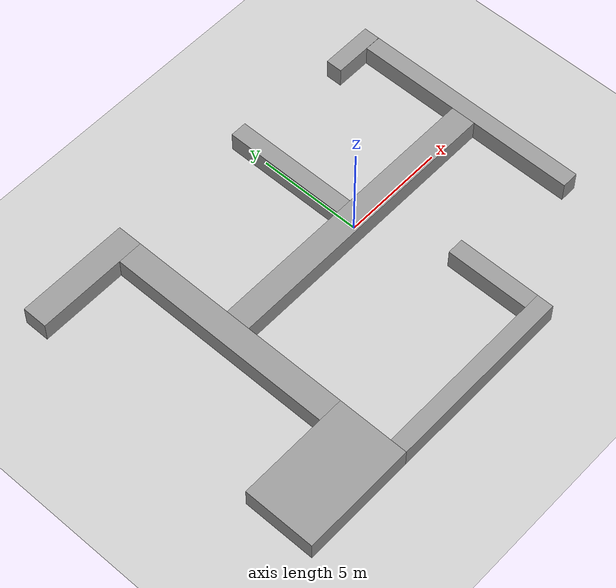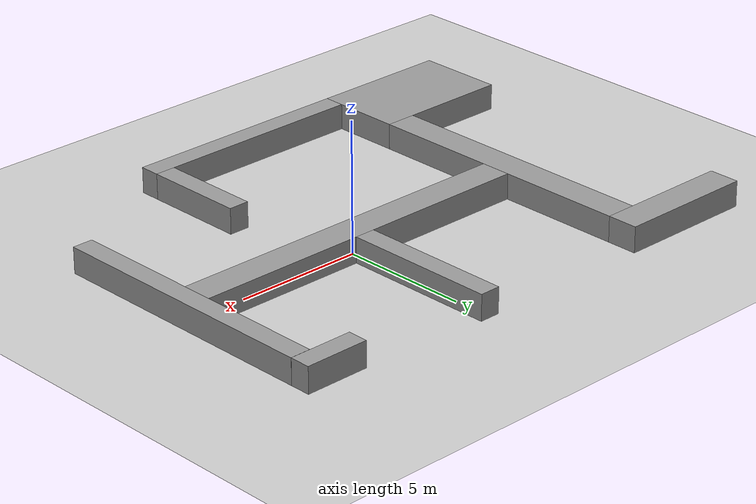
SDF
<sdf version="1.6">
 <world name="default">
  <model name="ground_plane">
   <static>1</static>
   <link name="link">
    <collision name="collision">
     <geometry><plane><normal>0 0 1</normal><size>100 100</size></plane></geometry>
     <surface><friction><ode><mu>100</mu><mu2>50</mu2></ode></friction></surface>
    </collision>
    <visual name="visual">
     <cast_shadows>0</cast_shadows>
     <geometry><plane><normal>0 0 1</normal><size>100 100</size></plane></geometry>
     <material>
      <script><uri>file://media/materials/scripts/gazebo.material</uri><name>Gazebo/Grey</name></script>
     </material>
    </visual>
   </link>
  </model>
  <model name="path">
   <link name="Wall_18">
    <pose>-7.6 0 0 0 -0 1.5708</pose>
    <inertial>
     <mass>100</mass>
     <inertia><ixx>1</ixx><ixy>0</ixy><ixz>0</ixz><iyy>1</iyy><iyz>0</iyz><izz>1</izz></inertia>
    </inertial>
    <visual name="Wall_18_Visual">
     <pose>0 0 0.5 0 -0 0</pose>
     <geometry><box><size>11 1.2 1</size></box></geometry>
     <material>
      <script><uri>file://media/materials/scripts/gazebo.material</uri><name>Gazebo/Grey</name></script>
      <ambient>0 0 0 1</ambient>
      <shader type="pixel"><normal_map>__default__</normal_map></shader>
      <diffuse>0 0 0 1</diffuse>
      <specular>0 0 0 1</specular>
      <emissive>0 0 0 1</emissive>
     </material>
     <meta><layer>0</layer></meta>
    </visual>
    <collision name="Wall_18_Collision">
     <pose>0 0 0.5 0 -0 0</pose>
     <geometry><box><size>11 1.2 1</size></box></geometry>
     <surface>
      <friction>
       <ode><mu>1</mu><mu2>1</mu2><fdir1>0 0 0</fdir1><slip1>0</slip1><slip2>0</slip2></ode>
       <torsional>
        <coefficient>1</coefficient>
        <patch_radius>0</patch_radius>
        <surface_radius>0</surface_radius>
        <use_patch_radius>1</use_patch_radius>
        <ode><slip>0</slip></ode>
       </torsional>
      </friction>
      <bounce><restitution_coefficient>0</restitution_coefficient><threshold>1e+06</threshold></bounce>
      <contact>
       <collide_without_contact>0</collide_without_contact>
       <collide_without_contact_bitmask>1</collide_without_contact_bitmask>
       <collide_bitmask>1</collide_bitmask>
       <ode>
        <soft_cfm>0</soft_cfm>
        <soft_erp>0.2</soft_erp>
        <kp>1e+13</kp>
        <kd>1</kd>
        <max_vel>0.01</max_vel>
        <min_depth>0</min_depth>
       </ode>
       <bullet>
        <split_impulse>1</split_impulse>
        <split_impulse_penetration_threshold>-0.01</split_impulse_penetration_threshold>
        <soft_cfm>0</soft_cfm>
        <soft_erp>0.2</soft_erp>
        <kp>1e+13</kp>
        <kd>1</kd>
       </bullet>
      </contact>
     </surface>
    </collision>
   </link>
   <link name="Wall_20">
    <pose>0 0 0 0 0 -0.000489</pose>
    <inertial>
     <mass>1</mass>
     <inertia><ixx>1</ixx><ixy>0</ixy><ixz>0</ixz><iyy>1</iyy><iyz>0</iyz><izz>1</izz></inertia>
    </inertial>
    <visual name="Wall_20_Visual">
     <pose>0 0 0.5 0 -0 0</pose>
     <geometry><box><size>14 1.2 1</size></box></geometry>
     <material>
      <script><uri>file://media/materials/scripts/gazebo.material</uri><name>Gazebo/Grey</name></script>
      <ambient>0 0 0 1</ambient>
      <shader type="pixel"><normal_map>__default__</normal_map></shader>
      <diffuse>0 0 0 1</diffuse>
      <specular>0 0 0 1</specular>
      <emissive>0 0 0 1</emissive>
     </material>
     <meta><layer>0</layer></meta>
    </visual>
    <collision name="Wall_20_Collision">
     <pose>0 0 0.5 0 -0 0</pose>
     <geometry><box><size>14 1.2 1</size></box></geometry>
     <surface>
      <friction>
       <ode><mu>1</mu><mu2>1</mu2><fdir1>0 0 0</fdir1><slip1>0</slip1><slip2>0</slip2></ode>
       <torsional>
        <coefficient>1</coefficient>
        <patch_radius>0</patch_radius>
        <surface_radius>0</surface_radius>
        <use_patch_radius>1</use_patch_radius>
        <ode><slip>0</slip></ode>
       </torsional>
      </friction>
      <bounce><restitution_coefficient>0</restitution_coefficient><threshold>1e+06</threshold></bounce>
      <contact>
       <collide_without_contact>0</collide_without_contact>
       <collide_without_contact_bitmask>1</collide_without_contact_bitmask>
       <collide_bitmask>1</collide_bitmask>
       <ode>
        <soft_cfm>0</soft_cfm>
        <soft_erp>0.2</soft_erp>
        <kp>1e+13</kp>
        <kd>1</kd>
        <max_vel>0.01</max_vel>
        <min_depth>0</min_depth>
       </ode>
       <bullet>
        <split_impulse>1</split_impulse>
        <split_impulse_penetration_threshold>-0.01</split_impulse_penetration_threshold>
        <soft_cfm>0</soft_cfm>
        <soft_erp>0.2</soft_erp>
        <kp>1e+13</kp>
        <kd>1</kd>
       </bullet>
      </contact>
     </surface>
    </collision>
   </link>
   <link name="Wall_21">
    <pose>7.4 0 0 0 -0 1.57072</pose>
    <inertial>
     <mass>1</mass>
     <inertia><ixx>1</ixx><ixy>0</ixy><ixz>0</ixz><iyy>1</iyy><iyz>0</iyz><izz>1</izz></inertia>
    </inertial>
    <visual name="Wall_21_Visual">
     <pose>0 0 0.5 0 -0 0</pose>
     <geometry><box><size>11 0.8 1</size></box></geometry>
     <material>
      <script><uri>file://media/materials/scripts/gazebo.material</uri><name>Gazebo/Grey</name></script>
      <ambient>0 0 0 1</ambient>
      <shader type="pixel"><normal_map>__default__</normal_map></shader>
      <diffuse>0 0 0 1</diffuse>
      <specular>0 0 0 1</specular>
      <emissive>0 0 0 1</emissive>
     </material>
     <meta><layer>0</layer></meta>
    </visual>
    <collision name="Wall_21_Collision">
     <pose>0 0 0.5 0 -0 0</pose>
     <geometry><box><size>11 0.8 1</size></box></geometry>
     <surface>
      <friction>
       <ode><mu>1</mu><mu2>1</mu2><fdir1>0 0 0</fdir1><slip1>0</slip1><slip2>0</slip2></ode>
       <torsional>
        <coefficient>1</coefficient>
        <patch_radius>0</patch_radius>
        <surface_radius>0</surface_radius>
        <use_patch_radius>1</use_patch_radius>
        <ode><slip>0</slip></ode>
       </torsional>
      </friction>
      <bounce><restitution_coefficient>0</restitution_coefficient><threshold>1e+06</threshold></bounce>
      <contact>
       <collide_without_contact>0</collide_without_contact>
       <collide_without_contact_bitmask>1</collide_without_contact_bitmask>
       <collide_bitmask>1</collide_bitmask>
       <ode>
        <soft_cfm>0</soft_cfm>
        <soft_erp>0.2</soft_erp>
        <kp>1e+13</kp>
        <kd>1</kd>
        <max_vel>0.01</max_vel>
        <min_depth>0</min_depth>
       </ode>
       <bullet>
        <split_impulse>1</split_impulse>
        <split_impulse_penetration_threshold>-0.01</split_impulse_penetration_threshold>
        <soft_cfm>0</soft_cfm>
        <soft_erp>0.2</soft_erp>
        <kp>1e+13</kp>
        <kd>1</kd>
       </bullet>
      </contact>
     </surface>
    </collision>
   </link>
   <link name="Wall_25">
    <pose>0 3.6 0 0 -0 1.5708</pose>
    <inertial>
     <mass>1</mass>
     <inertia><ixx>1</ixx><ixy>0</ixy><ixz>0</ixz><iyy>1</iyy><iyz>0</iyz><izz>1</izz></inertia>
    </inertial>
    <visual name="Wall_25_Visual">
     <pose>0 0 0.5 0 -0 0</pose>
     <geometry><box><size>6 0.8 1</size></box></geometry>
     <material>
      <script><uri>file://media/materials/scripts/gazebo.material</uri><name>Gazebo/Grey</name></script>
      <ambient>0 0 0 1</ambient>
      <shader type="pixel"><normal_map>__default__</normal_map></shader>
      <diffuse>0 0 0 1</diffuse>
      <specular>0 0 0 1</specular>
      <emissive>0 0 0 1</emissive>
     </material>
     <meta><layer>0</layer></meta>
    </visual>
    <collision name="Wall_25_Collision">
     <pose>0 0 0.5 0 -0 0</pose>
     <geometry><box><size>6 0.8 1</size></box></geometry>
     <surface>
      <friction>
       <ode><mu>1</mu><mu2>1</mu2><fdir1>0 0 0</fdir1><slip1>0</slip1><slip2>0</slip2></ode>
       <torsional>
        <coefficient>1</coefficient>
        <patch_radius>0</patch_radius>
        <surface_radius>0</surface_radius>
        <use_patch_radius>1</use_patch_radius>
        <ode><slip>0</slip></ode>
       </torsional>
      </friction>
      <bounce><restitution_coefficient>0</restitution_coefficient><threshold>1e+06</threshold></bounce>
      <contact>
       <collide_without_contact>0</collide_without_contact>
       <collide_without_contact_bitmask>1</collide_without_contact_bitmask>
       <collide_bitmask>1</collide_bitmask>
       <ode>
        <soft_cfm>0</soft_cfm>
        <soft_erp>0.2</soft_erp>
        <kp>1e+13</kp>
        <kd>1</kd>
        <max_vel>0.01</max_vel>
        <min_depth>0</min_depth>
       </ode>
       <bullet>
        <split_impulse>1</split_impulse>
        <split_impulse_penetration_threshold>-0.01</split_impulse_penetration_threshold>
        <soft_cfm>0</soft_cfm>
        <soft_erp>0.2</soft_erp>
        <kp>1e+13</kp>
        <kd>1</kd>
       </bullet>
      </contact>
     </surface>
    </collision>
   </link>
   <link name="Wall_27">
    <pose>-2.5 -8.5 0 0 -0 0</pose>
    <inertial>
     <mass>1</mass>
     <inertia><ixx>1</ixx><ixy>0</ixy><ixz>0</ixz><iyy>1</iyy><iyz>0</iyz><izz>1</izz></inertia>
    </inertial>
    <visual name="Wall_27_Visual">
     <pose>0 0 0.5 0 -0 0</pose>
     <geometry><box><size>9 0.8 1</size></box></geometry>
     <material>
      <script><uri>file://media/materials/scripts/gazebo.material</uri><name>Gazebo/Grey</name></script>
      <ambient>0 0 0 1</ambient>
      <shader type="pixel"><normal_map>__default__</normal_map></shader>
      <diffuse>0 0 0 1</diffuse>
      <specular>0 0 0 1</specular>
      <emissive>0 0 0 1</emissive>
     </material>
     <meta><layer>0</layer></meta>
    </visual>
    <collision name="Wall_27_Collision">
     <pose>0 0 0.5 0 -0 0</pose>
     <geometry><box><size>9 0.8 1</size></box></geometry>
     <surface>
      <friction>
       <ode><mu>1</mu><mu2>1</mu2><fdir1>0 0 0</fdir1><slip1>0</slip1><slip2>0</slip2></ode>
       <torsional>
        <coefficient>1</coefficient>
        <patch_radius>0</patch_radius>
        <surface_radius>0</surface_radius>
        <use_patch_radius>1</use_patch_radius>
        <ode><slip>0</slip></ode>
       </torsional>
      </friction>
      <bounce><restitution_coefficient>0</restitution_coefficient><threshold>1e+06</threshold></bounce>
      <contact>
       <collide_without_contact>0</collide_without_contact>
       <collide_without_contact_bitmask>1</collide_without_contact_bitmask>
       <collide_bitmask>1</collide_bitmask>
       <ode>
        <soft_cfm>0</soft_cfm>
        <soft_erp>0.2</soft_erp>
        <kp>1e+13</kp>
        <kd>1</kd>
        <max_vel>0.01</max_vel>
        <min_depth>0</min_depth>
       </ode>
       <bullet>
        <split_impulse>1</split_impulse>
        <split_impulse_penetration_threshold>-0.01</split_impulse_penetration_threshold>
        <soft_cfm>0</soft_cfm>
        <soft_erp>0.2</soft_erp>
        <kp>1e+13</kp>
        <kd>1</kd>
       </bullet>
      </contact>
     </surface>
    </collision>
   </link>
   <link name="Wall_31">
    <pose>1.6 -6.1 0 0 0 -1.57079</pose>
    <inertial>
     <mass>1</mass>
     <inertia><ixx>1</ixx><ixy>0</ixy><ixz>0</ixz><iyy>1</iyy><iyz>0</iyz><izz>1</izz></inertia>
    </inertial>
    <visual name="Wall_31_Visual">
     <pose>0 0 0.5 0 -0 0</pose>
     <geometry><box><size>4 0.8 1</size></box></geometry>
     <material>
      <script><uri>file://media/materials/scripts/gazebo.material</uri><name>Gazebo/Grey</name></script>
      <ambient>0 0 0 1</ambient>
      <shader type="pixel"><normal_map>__default__</normal_map></shader>
      <diffuse>0 0 0 1</diffuse>
      <specular>0 0 0 1</specular>
      <emissive>0 0 0 1</emissive>
     </material>
     <meta><layer>0</layer></meta>
    </visual>
    <collision name="Wall_31_Collision">
     <pose>0 0 0.5 0 -0 0</pose>
     <geometry><box><size>4 0.8 1</size></box></geometry>
     <surface>
      <friction>
       <ode><mu>1</mu><mu2>1</mu2><fdir1>0 0 0</fdir1><slip1>0</slip1><slip2>0</slip2></ode>
       <torsional>
        <coefficient>1</coefficient>
        <patch_radius>0</patch_radius>
        <surface_radius>0</surface_radius>
        <use_patch_radius>1</use_patch_radius>
        <ode><slip>0</slip></ode>
       </torsional>
      </friction>
      <bounce><restitution_coefficient>0</restitution_coefficient><threshold>1e+06</threshold></bounce>
      <contact>
       <collide_without_contact>0</collide_without_contact>
       <collide_without_contact_bitmask>1</collide_without_contact_bitmask>
       <collide_bitmask>1</collide_bitmask>
       <ode>
        <soft_cfm>0</soft_cfm>
        <soft_erp>0.2</soft_erp>
        <kp>1e+13</kp>
        <kd>1</kd>
        <max_vel>0.01</max_vel>
        <min_depth>0</min_depth>
       </ode>
       <bullet>
        <split_impulse>1</split_impulse>
        <split_impulse_penetration_threshold>-0.01</split_impulse_penetration_threshold>
        <soft_cfm>0</soft_cfm>
        <soft_erp>0.2</soft_erp>
        <kp>1e+13</kp>
        <kd>1</kd>
       </bullet>
      </contact>
     </surface>
    </collision>
   </link>
   <link name="Wall_35">
    <pose>6.55 5.9 0 0 -0 0.000465</pose>
    <inertial>
     <mass>1</mass>
     <inertia><ixx>1</ixx><ixy>0</ixy><ixz>0</ixz><iyy>1</iyy><iyz>0</iyz><izz>1</izz></inertia>
    </inertial>
    <visual name="Wall_35_Visual">
     <pose>0 0 0.5 0 -0 0</pose>
     <geometry><box><size>2.5 0.79 1</size></box></geometry>
     <material>
      <script><uri>file://media/materials/scripts/gazebo.material</uri><name>Gazebo/Grey</name></script>
      <ambient>0 0 0 1</ambient>
      <shader type="pixel"><normal_map>__default__</normal_map></shader>
      <diffuse>0 0 0 1</diffuse>
      <specular>0 0 0 1</specular>
      <emissive>0 0 0 1</emissive>
     </material>
     <meta><layer>0</layer></meta>
    </visual>
    <collision name="Wall_35_Collision">
     <pose>0 0 0.5 0 -0 0</pose>
     <geometry><box><size>2.5 0.8 1</size></box></geometry>
     <surface>
      <friction>
       <ode><mu>1</mu><mu2>1</mu2><fdir1>0 0 0</fdir1><slip1>0</slip1><slip2>0</slip2></ode>
       <torsional>
        <coefficient>1</coefficient>
        <patch_radius>0</patch_radius>
        <surface_radius>0</surface_radius>
        <use_patch_radius>1</use_patch_radius>
        <ode><slip>0</slip></ode>
       </torsional>
      </friction>
      <bounce><restitution_coefficient>0</restitution_coefficient><threshold>1e+06</threshold></bounce>
      <contact>
       <collide_without_contact>0</collide_without_contact>
       <collide_without_contact_bitmask>1</collide_without_contact_bitmask>
       <collide_bitmask>1</collide_bitmask>
       <ode>
        <soft_cfm>0</soft_cfm>
        <soft_erp>0.2</soft_erp>
        <kp>1e+13</kp>
        <kd>1</kd>
        <max_vel>0.01</max_vel>
        <min_depth>0</min_depth>
       </ode>
       <bullet>
        <split_impulse>1</split_impulse>
        <split_impulse_penetration_threshold>-0.01</split_impulse_penetration_threshold>
        <soft_cfm>0</soft_cfm>
        <soft_erp>0.2</soft_erp>
        <kp>1e+13</kp>
        <kd>1</kd>
       </bullet>
      </contact>
     </surface>
    </collision>
   </link>
   <link name="Wall_44">
    <pose>-9.7 6.1 0 0 -0 3.14159</pose>
    <inertial>
     <mass>1</mass>
     <inertia><ixx>1</ixx><ixy>0</ixy><ixz>0</ixz><iyy>1</iyy><iyz>0</iyz><izz>1</izz></inertia>
    </inertial>
    <visual name="Wall_44_Visual">
     <pose>0 0 0.5 0 -0 0</pose>
     <geometry><box><size>5.4 1.2 1</size></box></geometry>
     <material>
      <script><uri>file://media/materials/scripts/gazebo.material</uri><name>Gazebo/Grey</name></script>
      <ambient>0 0 0 1</ambient>
      <shader type="pixel"><normal_map>__default__</normal_map></shader>
      <diffuse>0 0 0 1</diffuse>
      <specular>0 0 0 1</specular>
      <emissive>0 0 0 1</emissive>
     </material>
     <meta><layer>0</layer></meta>
    </visual>
    <collision name="Wall_44_Collision">
     <pose>0 0 0.5 0 -0 0</pose>
     <geometry><box><size>5.4 1.2 1</size></box></geometry>
     <surface>
      <friction>
       <ode><mu>1</mu><mu2>1</mu2><fdir1>0 0 0</fdir1><slip1>0</slip1><slip2>0</slip2></ode>
       <torsional>
        <coefficient>1</coefficient>
        <patch_radius>0</patch_radius>
        <surface_radius>0</surface_radius>
        <use_patch_radius>1</use_patch_radius>
        <ode><slip>0</slip></ode>
       </torsional>
      </friction>
      <bounce><restitution_coefficient>0</restitution_coefficient><threshold>1e+06</threshold></bounce>
      <contact>
       <collide_without_contact>0</collide_without_contact>
       <collide_without_contact_bitmask>1</collide_without_contact_bitmask>
       <collide_bitmask>1</collide_bitmask>
       <ode>
        <soft_cfm>0</soft_cfm>
        <soft_erp>0.2</soft_erp>
        <kp>1e+13</kp>
        <kd>1</kd>
        <max_vel>0.01</max_vel>
        <min_depth>0</min_depth>
       </ode>
       <bullet>
        <split_impulse>1</split_impulse>
        <split_impulse_penetration_threshold>-0.01</split_impulse_penetration_threshold>
        <soft_cfm>0</soft_cfm>
        <soft_erp>0.2</soft_erp>
        <kp>1e+13</kp>
        <kd>1</kd>
       </bullet>
      </contact>
     </surface>
    </collision>
   </link>
   <link name="Wall_62">
    <pose>-9.7 -7.2 0 0 -0 0</pose>
    <inertial>
     <mass>1</mass>
     <inertia><ixx>1</ixx><ixy>0</ixy><ixz>0</ixz><iyy>1</iyy><iyz>0</iyz><izz>1</izz></inertia>
    </inertial>
    <visual name="Wall_62_Visual">
     <pose>0 0 0.5 0 -0 0</pose>
     <geometry><box><size>5.4 3.4 1</size></box></geometry>
     <material>
      <script><uri>file://media/materials/scripts/gazebo.material</uri><name>Gazebo/Grey</name></script>
      <ambient>0 0 0 1</ambient>
      <shader type="pixel"><normal_map>__default__</normal_map></shader>
      <diffuse>0 0 0 1</diffuse>
      <specular>0 0 0 1</specular>
      <emissive>0 0 0 1</emissive>
     </material>
     <meta><layer>0</layer></meta>
    </visual>
    <collision name="Wall_62_Collision">
     <pose>0 0 0.5 0 -0 0</pose>
     <geometry><box><size>5.4 3.4 1</size></box></geometry>
     <surface>
      <friction>
       <ode><mu>1</mu><mu2>1</mu2><fdir1>0 0 0</fdir1><slip1>0</slip1><slip2>0</slip2></ode>
       <torsional>
        <coefficient>1</coefficient>
        <patch_radius>0</patch_radius>
        <surface_radius>0</surface_radius>
        <use_patch_radius>1</use_patch_radius>
        <ode><slip>0</slip></ode>
       </torsional>
      </friction>
      <bounce><restitution_coefficient>0</restitution_coefficient><threshold>1e+06</threshold></bounce>
      <contact>
       <collide_without_contact>0</collide_without_contact>
       <collide_without_contact_bitmask>1</collide_without_contact_bitmask>
       <collide_bitmask>1</collide_bitmask>
       <ode>
        <soft_cfm>0</soft_cfm>
        <soft_erp>0.2</soft_erp>
        <kp>1e+13</kp>
        <kd>1</kd>
        <max_vel>0.01</max_vel>
        <min_depth>0</min_depth>
       </ode>
       <bullet>
        <split_impulse>1</split_impulse>
        <split_impulse_penetration_threshold>-0.01</split_impulse_penetration_threshold>
        <soft_cfm>0</soft_cfm>
        <soft_erp>0.2</soft_erp>
        <kp>1e+13</kp>
        <kd>1</kd>
       </bullet>
      </contact>
     </surface>
    </collision>
   </link>
   <static>1</static>
  </model>
 </world>
</sdf>
